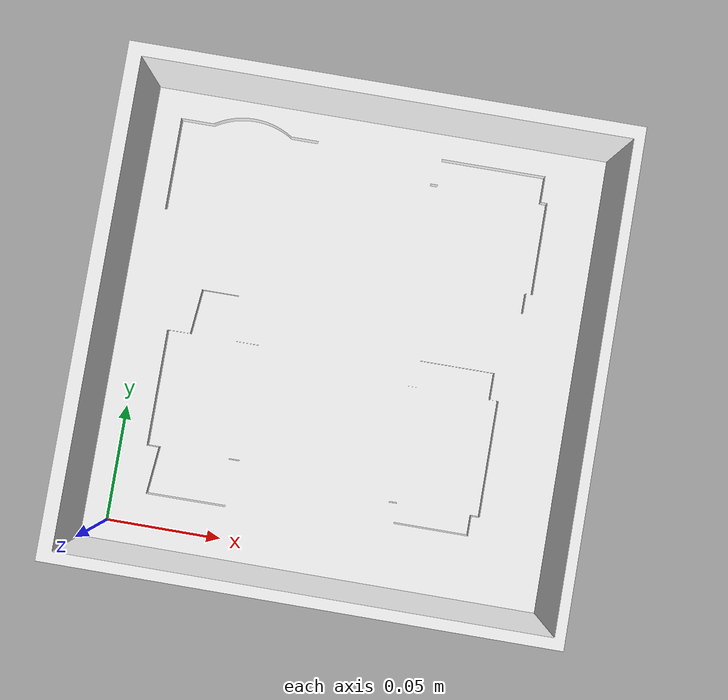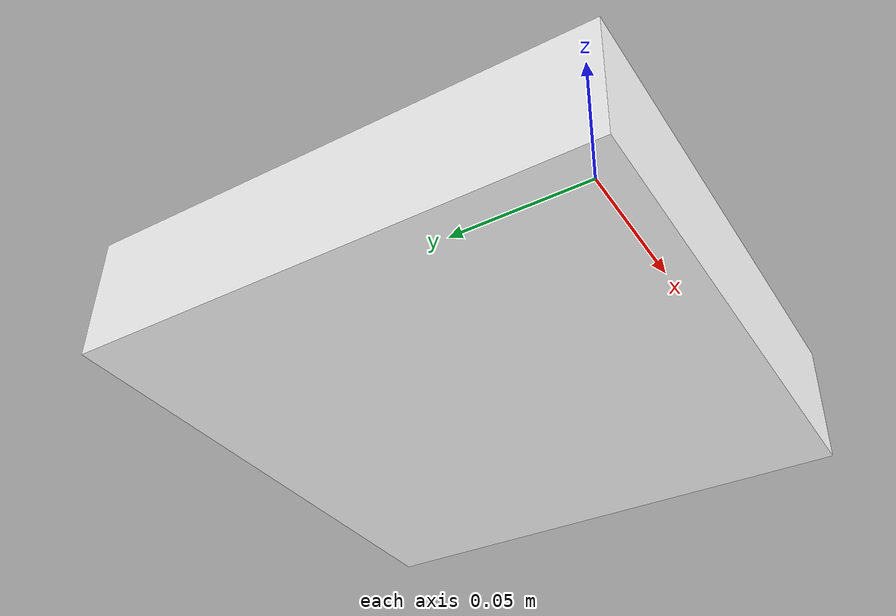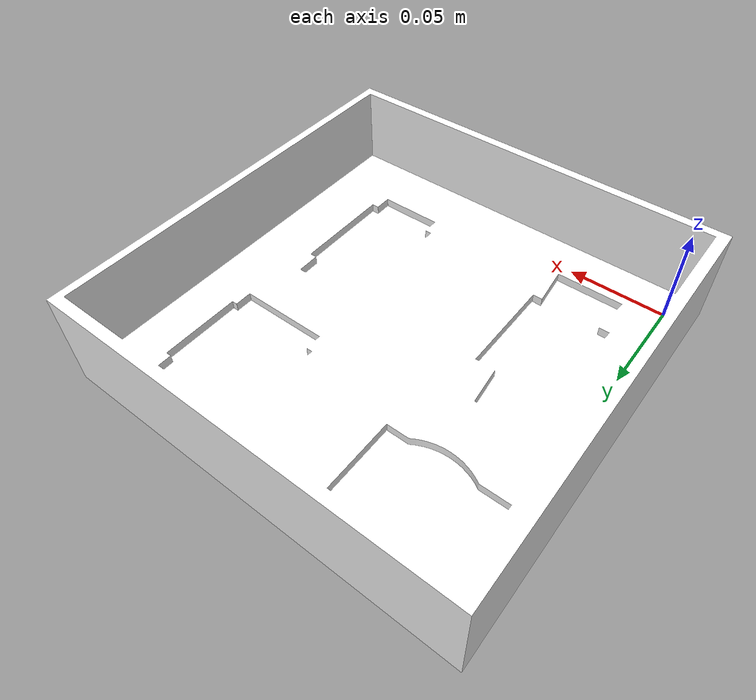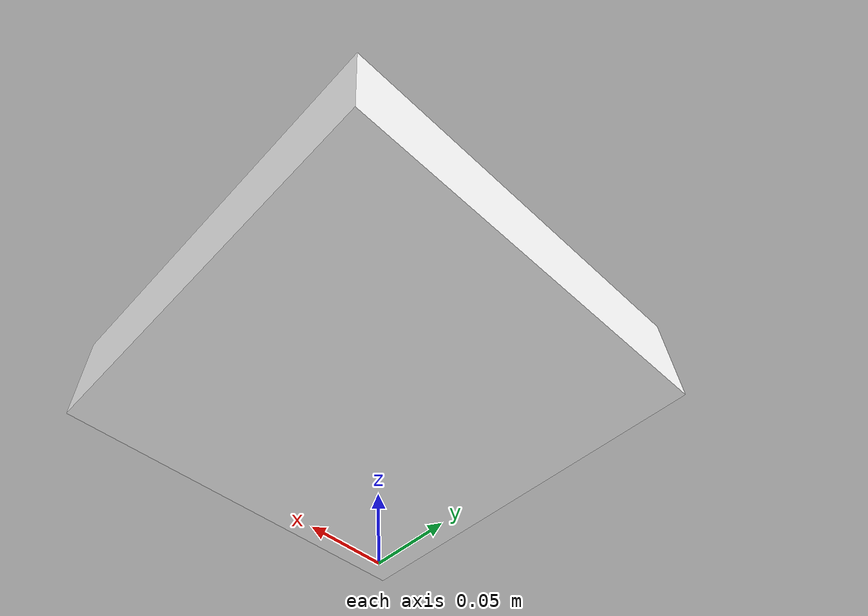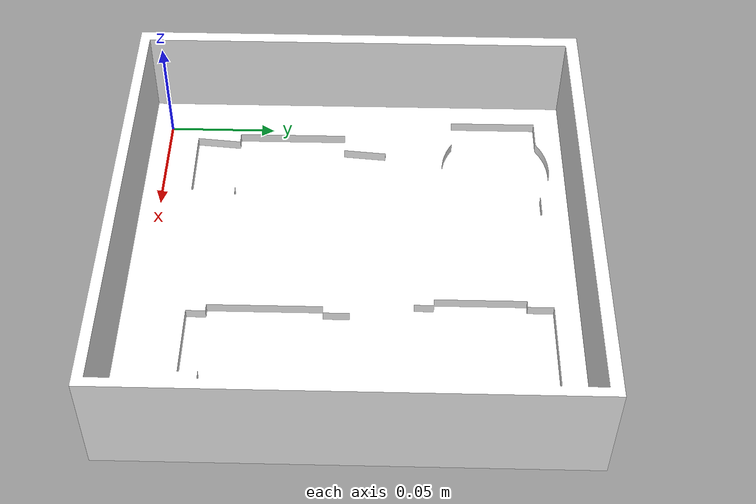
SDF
<?xml version='1.0'?>
<sdf version='1.6'>
  <model name='box'>
    <link name='body'>
      <self_collide>0</self_collide>
      <enable_wind>0</enable_wind>
      <kinematic>0</kinematic>
      <pose frame=''>0 0 0 0 -0 0</pose>
      <gravity>1</gravity>
      <inertial>
        <mass>1</mass>
        <pose frame=''>0 0 0 0 -0 0</pose>
        <inertia>
          <ixx>1</ixx>
          <ixy>0</ixy>
          <ixz>0</ixz>
          <iyy>1</iyy>
          <iyz>0</iyz>
          <izz>1</izz>
        </inertia>
      </inertial>
      <visual name='visual'>
        <geometry>
          <mesh>
            <uri>model://box/box.stl</uri>
            <scale>1 1 1</scale>
          </mesh>
        </geometry>
        <material>
          <script>
            <uri>model://box/materials/scripts</uri>
            <uri>model://box/materials/textures</uri>
            <name>boxcolor</name>
          </script>
          <shader type='vertex'>
            <normal_map>__default__</normal_map>
          </shader>
          <ambient>1 1 1 1</ambient>
          <diffuse>1 1 1 1</diffuse>
          <specular>0 0 0 1</specular>
          <emissive>0 0 0 1</emissive>
        </material>
        <pose frame=''>0.0 0.0 0 0 -0 0</pose>
        <transparency>0</transparency>
        <cast_shadows>1</cast_shadows>
      </visual>
      <collision name='collision_0'>
        <laser_retro>0</laser_retro>
        <max_contacts>10</max_contacts>
        <pose frame=''>0.09 0.09 0.003 0 -0 0</pose>
        <geometry>
          <box>
            <size>0.205 0.205 0.005</size>
          </box>
        </geometry>
        <surface>
          <friction>
            <ode>
              <mu>1</mu>
              <mu2>1</mu2>
              <fdir1>0 0 0</fdir1>
              <slip1>0</slip1>
              <slip2>0</slip2>
            </ode>
            <torsional>
              <coefficient>1</coefficient>
              <patch_radius>0</patch_radius>
              <surface_radius>0</surface_radius>
              <use_patch_radius>1</use_patch_radius>
              <ode>
                <slip>0</slip>
              </ode>
            </torsional>
          </friction>
          <bounce>
            <restitution_coefficient>0</restitution_coefficient>
            <threshold>1e+06</threshold>
          </bounce>
          <contact>
            <collide_without_contact>0</collide_without_contact>
            <collide_without_contact_bitmask>1</collide_without_contact_bitmask>
            <collide_bitmask>1</collide_bitmask>
            <ode>
              <soft_cfm>0</soft_cfm>
              <soft_erp>0.2</soft_erp>
              <kp>1e+13</kp>
              <kd>1</kd>
              <max_vel>0.01</max_vel>
              <min_depth>0</min_depth>
            </ode>
            <bullet>
              <split_impulse>1</split_impulse>
              <split_impulse_penetration_threshold>-0.01</split_impulse_penetration_threshold>
              <soft_cfm>0</soft_cfm>
              <soft_erp>0.2</soft_erp>
              <kp>1e+13</kp>
              <kd>1</kd>
            </bullet>
          </contact>
        </surface>
      </collision>
    </link>
    <static>0</static>
    <allow_auto_disable>1</allow_auto_disable>
  </model>
</sdf>
